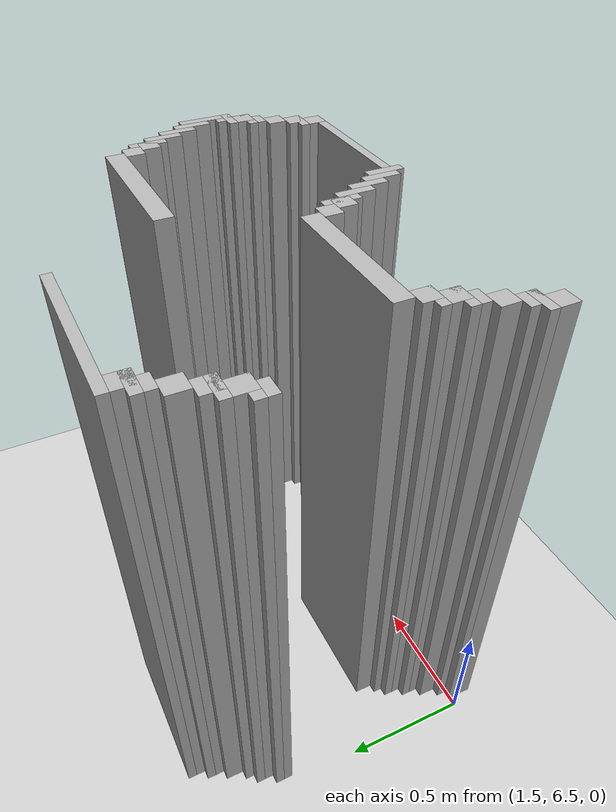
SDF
<sdf version="1.6">
 <world name="slam_world">
  <model name="ground_plane">
   <static>true</static>
   <link name="link">
    <collision name="collision">
     <geometry><plane><normal>0 0 1</normal><size>100 100</size></plane></geometry>
    </collision>
    <visual name="visual">
     <geometry><plane><normal>0 0 1</normal><size>100 100</size></plane></geometry>
     <material>
      <ambient>0.8 0.8 0.8 1</ambient>
      <diffuse>0.8 0.8 0.8 1</diffuse>
      <specular>0.8 0.8 0.8 1</specular>
     </material>
    </visual>
   </link>
  </model>
  <model name="wall_3194">
   <static>true</static>
   <pose>2.0011600928074245 7.6392111368909505 1.0 0 0 0</pose>
   <link name="link">
    <collision name="collision">
     <geometry><box><size>0.5916473317865429 0.03480278422273782 2.0</size></box></geometry>
    </collision>
    <visual name="visual">
     <geometry><box><size>0.5916473317865429 0.03480278422273782 2.0</size></box></geometry>
     <material><ambient>0.5 0.5 0.5 1</ambient><diffuse>0.7 0.7 0.7 1</diffuse></material>
    </visual>
   </link>
  </model>
  <model name="wall_3206">
   <static>true</static>
   <pose>1.740139211136891 7.587006960556844 1.0 0 0 0</pose>
   <link name="link">
    <collision name="collision">
     <geometry><box><size>0.06960556844547564 0.06960556844547564 2.0</size></box></geometry>
    </collision>
    <visual name="visual">
     <geometry><box><size>0.06960556844547564 0.06960556844547564 2.0</size></box></geometry>
     <material><ambient>0.5 0.5 0.5 1</ambient><diffuse>0.7 0.7 0.7 1</diffuse></material>
    </visual>
   </link>
  </model>
  <model name="wall_3219">
   <static>true</static>
   <pose>1.722737819025522 7.569605568445476 1.0 0 0 0</pose>
   <link name="link">
    <collision name="collision">
     <geometry><box><size>0.10440835266821345 0.03480278422273782 2.0</size></box></geometry>
    </collision>
    <visual name="visual">
     <geometry><box><size>0.10440835266821345 0.03480278422273782 2.0</size></box></geometry>
     <material><ambient>0.5 0.5 0.5 1</ambient><diffuse>0.7 0.7 0.7 1</diffuse></material>
    </visual>
   </link>
  </model>
  <model name="wall_3232">
   <static>true</static>
   <pose>1.705336426914153 7.534802784222737 1.0 0 0 0</pose>
   <link name="link">
    <collision name="collision">
     <geometry><box><size>0.06960556844547564 0.03480278422273782 2.0</size></box></geometry>
    </collision>
    <visual name="visual">
     <geometry><box><size>0.06960556844547564 0.03480278422273782 2.0</size></box></geometry>
     <material><ambient>0.5 0.5 0.5 1</ambient><diffuse>0.7 0.7 0.7 1</diffuse></material>
    </visual>
   </link>
  </model>
  <model name="wall_3241">
   <static>true</static>
   <pose>1.6705336426914152 7.48259860788863 1.0 0 0 0</pose>
   <link name="link">
    <collision name="collision">
     <geometry><box><size>0.06960556844547564 0.06960556844547564 2.0</size></box></geometry>
    </collision>
    <visual name="visual">
     <geometry><box><size>0.06960556844547564 0.06960556844547564 2.0</size></box></geometry>
     <material><ambient>0.5 0.5 0.5 1</ambient><diffuse>0.7 0.7 0.7 1</diffuse></material>
    </visual>
   </link>
  </model>
  <model name="wall_3254">
   <static>true</static>
   <pose>1.6357308584686774 7.412993039443156 1.0 0 0 0</pose>
   <link name="link">
    <collision name="collision">
     <geometry><box><size>0.06960556844547564 0.06960556844547564 2.0</size></box></geometry>
    </collision>
    <visual name="visual">
     <geometry><box><size>0.06960556844547564 0.06960556844547564 2.0</size></box></geometry>
     <material><ambient>0.5 0.5 0.5 1</ambient><diffuse>0.7 0.7 0.7 1</diffuse></material>
    </visual>
   </link>
  </model>
  <model name="wall_3267">
   <static>true</static>
   <pose>1.6183294663573085 7.395591647331786 1.0 0 0 0</pose>
   <link name="link">
    <collision name="collision">
     <geometry><box><size>0.10440835266821345 0.03480278422273782 2.0</size></box></geometry>
    </collision>
    <visual name="visual">
     <geometry><box><size>0.10440835266821345 0.03480278422273782 2.0</size></box></geometry>
     <material><ambient>0.5 0.5 0.5 1</ambient><diffuse>0.7 0.7 0.7 1</diffuse></material>
    </visual>
   </link>
  </model>
  <model name="wall_3279">
   <static>true</static>
   <pose>1.6009280742459395 7.34338747099768 1.0 0 0 0</pose>
   <link name="link">
    <collision name="collision">
     <geometry><box><size>0.06960556844547564 0.06960556844547564 2.0</size></box></geometry>
    </collision>
    <visual name="visual">
     <geometry><box><size>0.06960556844547564 0.06960556844547564 2.0</size></box></geometry>
     <material><ambient>0.5 0.5 0.5 1</ambient><diffuse>0.7 0.7 0.7 1</diffuse></material>
    </visual>
   </link>
  </model>
  <model name="wall_3287">
   <static>true</static>
   <pose>1.5835266821345706 7.32598607888631 1.0 0 0 0</pose>
   <link name="link">
    <collision name="collision">
     <geometry><box><size>0.10440835266821345 0.03480278422273782 2.0</size></box></geometry>
    </collision>
    <visual name="visual">
     <geometry><box><size>0.10440835266821345 0.03480278422273782 2.0</size></box></geometry>
     <material><ambient>0.5 0.5 0.5 1</ambient><diffuse>0.7 0.7 0.7 1</diffuse></material>
    </visual>
   </link>
  </model>
  <model name="wall_3299">
   <static>true</static>
   <pose>1.5661252900232019 7.291183294663573 1.0 0 0 0</pose>
   <link name="link">
    <collision name="collision">
     <geometry><box><size>0.06960556844547564 0.03480278422273782 2.0</size></box></geometry>
    </collision>
    <visual name="visual">
     <geometry><box><size>0.06960556844547564 0.03480278422273782 2.0</size></box></geometry>
     <material><ambient>0.5 0.5 0.5 1</ambient><diffuse>0.7 0.7 0.7 1</diffuse></material>
    </visual>
   </link>
  </model>
  <model name="wall_3307">
   <static>true</static>
   <pose>2.7494199535962878 7.238979118329466 1.0 0 0 0</pose>
   <link name="link">
    <collision name="collision">
     <geometry><box><size>0.5568445475638051 0.06960556844547564 2.0</size></box></geometry>
    </collision>
    <visual name="visual">
     <geometry><box><size>0.5568445475638051 0.06960556844547564 2.0</size></box></geometry>
     <material><ambient>0.5 0.5 0.5 1</ambient><diffuse>0.7 0.7 0.7 1</diffuse></material>
    </visual>
   </link>
  </model>
  <model name="wall_3320">
   <static>true</static>
   <pose>3.02784222737819 7.16937354988399 1.0 0 0 0</pose>
   <link name="link">
    <collision name="collision">
     <geometry><box><size>0.06960556844547564 0.06960556844547564 2.0</size></box></geometry>
    </collision>
    <visual name="visual">
     <geometry><box><size>0.06960556844547564 0.06960556844547564 2.0</size></box></geometry>
     <material><ambient>0.5 0.5 0.5 1</ambient><diffuse>0.7 0.7 0.7 1</diffuse></material>
    </visual>
   </link>
  </model>
  <model name="wall_3332">
   <static>true</static>
   <pose>3.0800464037122968 7.099767981438514 1.0 0 0 0</pose>
   <link name="link">
    <collision name="collision">
     <geometry><box><size>0.03480278422273782 0.13921113689095127 2.0</size></box></geometry>
    </collision>
    <visual name="visual">
     <geometry><box><size>0.03480278422273782 0.13921113689095127 2.0</size></box></geometry>
     <material><ambient>0.5 0.5 0.5 1</ambient><diffuse>0.7 0.7 0.7 1</diffuse></material>
    </visual>
   </link>
  </model>
  <model name="wall_3344">
   <static>true</static>
   <pose>3.062645011600928 7.099767981438514 1.0 0 0 0</pose>
   <link name="link">
    <collision name="collision">
     <geometry><box><size>0.06960556844547564 0.06960556844547564 2.0</size></box></geometry>
    </collision>
    <visual name="visual">
     <geometry><box><size>0.06960556844547564 0.06960556844547564 2.0</size></box></geometry>
     <material><ambient>0.5 0.5 0.5 1</ambient><diffuse>0.7 0.7 0.7 1</diffuse></material>
    </visual>
   </link>
  </model>
  <model name="wall_3356">
   <static>true</static>
   <pose>3.1148491879350346 7.03016241299304 1.0 0 0 0</pose>
   <link name="link">
    <collision name="collision">
     <geometry><box><size>0.03480278422273782 0.13921113689095127 2.0</size></box></geometry>
    </collision>
    <visual name="visual">
     <geometry><box><size>0.03480278422273782 0.13921113689095127 2.0</size></box></geometry>
     <material><ambient>0.5 0.5 0.5 1</ambient><diffuse>0.7 0.7 0.7 1</diffuse></material>
    </visual>
   </link>
  </model>
  <model name="wall_3373">
   <static>true</static>
   <pose>3.1496519721577725 6.960556844547564 1.0 0 0 0</pose>
   <link name="link">
    <collision name="collision">
     <geometry><box><size>0.03480278422273782 0.13921113689095127 2.0</size></box></geometry>
    </collision>
    <visual name="visual">
     <geometry><box><size>0.03480278422273782 0.13921113689095127 2.0</size></box></geometry>
     <material><ambient>0.5 0.5 0.5 1</ambient><diffuse>0.7 0.7 0.7 1</diffuse></material>
    </visual>
   </link>
  </model>
  <model name="wall_3390">
   <static>true</static>
   <pose>3.1844547563805103 6.890951276102088 1.0 0 0 0</pose>
   <link name="link">
    <collision name="collision">
     <geometry><box><size>0.03480278422273782 0.13921113689095127 2.0</size></box></geometry>
    </collision>
    <visual name="visual">
     <geometry><box><size>0.03480278422273782 0.13921113689095127 2.0</size></box></geometry>
     <material><ambient>0.5 0.5 0.5 1</ambient><diffuse>0.7 0.7 0.7 1</diffuse></material>
    </visual>
   </link>
  </model>
  <model name="wall_3402">
   <static>true</static>
   <pose>3.219257540603248 6.821345707656612 1.0 0 0 0</pose>
   <link name="link">
    <collision name="collision">
     <geometry><box><size>0.03480278422273782 0.2088167053364269 2.0</size></box></geometry>
    </collision>
    <visual name="visual">
     <geometry><box><size>0.03480278422273782 0.2088167053364269 2.0</size></box></geometry>
     <material><ambient>0.5 0.5 0.5 1</ambient><diffuse>0.7 0.7 0.7 1</diffuse></material>
    </visual>
   </link>
  </model>
  <model name="wall_3419">
   <static>true</static>
   <pose>2.0185614849187936 6.821345707656612 1.0 0 0 0</pose>
   <link name="link">
    <collision name="collision">
     <geometry><box><size>0.5568445475638051 0.06960556844547564 2.0</size></box></geometry>
    </collision>
    <visual name="visual">
     <geometry><box><size>0.5568445475638051 0.06960556844547564 2.0</size></box></geometry>
     <material><ambient>0.5 0.5 0.5 1</ambient><diffuse>0.7 0.7 0.7 1</diffuse></material>
    </visual>
   </link>
  </model>
  <model name="wall_3438">
   <static>true</static>
   <pose>1.740139211136891 6.751740139211137 1.0 0 0 0</pose>
   <link name="link">
    <collision name="collision">
     <geometry><box><size>0.06960556844547564 0.06960556844547564 2.0</size></box></geometry>
    </collision>
    <visual name="visual">
     <geometry><box><size>0.06960556844547564 0.06960556844547564 2.0</size></box></geometry>
     <material><ambient>0.5 0.5 0.5 1</ambient><diffuse>0.7 0.7 0.7 1</diffuse></material>
    </visual>
   </link>
  </model>
  <model name="wall_3439">
   <static>true</static>
   <pose>2.296983758700696 6.751740139211137 1.0 0 0 0</pose>
   <link name="link">
    <collision name="collision">
     <geometry><box><size>0.06960556844547564 0.06960556844547564 2.0</size></box></geometry>
    </collision>
    <visual name="visual">
     <geometry><box><size>0.06960556844547564 0.06960556844547564 2.0</size></box></geometry>
     <material><ambient>0.5 0.5 0.5 1</ambient><diffuse>0.7 0.7 0.7 1</diffuse></material>
    </visual>
   </link>
  </model>
  <model name="wall_3440">
   <static>true</static>
   <pose>3.201856148491879 6.751740139211137 1.0 0 0 0</pose>
   <link name="link">
    <collision name="collision">
     <geometry><box><size>0.06960556844547564 0.06960556844547564 2.0</size></box></geometry>
    </collision>
    <visual name="visual">
     <geometry><box><size>0.06960556844547564 0.06960556844547564 2.0</size></box></geometry>
     <material><ambient>0.5 0.5 0.5 1</ambient><diffuse>0.7 0.7 0.7 1</diffuse></material>
    </visual>
   </link>
  </model>
  <model name="wall_3458">
   <static>true</static>
   <pose>1.722737819025522 6.734338747099768 1.0 0 0 0</pose>
   <link name="link">
    <collision name="collision">
     <geometry><box><size>0.10440835266821345 0.03480278422273782 2.0</size></box></geometry>
    </collision>
    <visual name="visual">
     <geometry><box><size>0.10440835266821345 0.03480278422273782 2.0</size></box></geometry>
     <material><ambient>0.5 0.5 0.5 1</ambient><diffuse>0.7 0.7 0.7 1</diffuse></material>
    </visual>
   </link>
  </model>
  <model name="wall_3459">
   <static>true</static>
   <pose>2.3491879350348026 6.682134570765661 1.0 0 0 0</pose>
   <link name="link">
    <collision name="collision">
     <geometry><box><size>0.03480278422273782 0.13921113689095127 2.0</size></box></geometry>
    </collision>
    <visual name="visual">
     <geometry><box><size>0.03480278422273782 0.13921113689095127 2.0</size></box></geometry>
     <material><ambient>0.5 0.5 0.5 1</ambient><diffuse>0.7 0.7 0.7 1</diffuse></material>
    </visual>
   </link>
  </model>
  <model name="wall_3460">
   <static>true</static>
   <pose>3.1844547563805103 6.734338747099768 1.0 0 0 0</pose>
   <link name="link">
    <collision name="collision">
     <geometry><box><size>0.10440835266821345 0.03480278422273782 2.0</size></box></geometry>
    </collision>
    <visual name="visual">
     <geometry><box><size>0.10440835266821345 0.03480278422273782 2.0</size></box></geometry>
     <material><ambient>0.5 0.5 0.5 1</ambient><diffuse>0.7 0.7 0.7 1</diffuse></material>
    </visual>
   </link>
  </model>
  <model name="wall_3478">
   <static>true</static>
   <pose>1.705336426914153 6.682134570765661 1.0 0 0 0</pose>
   <link name="link">
    <collision name="collision">
     <geometry><box><size>0.06960556844547564 0.06960556844547564 2.0</size></box></geometry>
    </collision>
    <visual name="visual">
     <geometry><box><size>0.06960556844547564 0.06960556844547564 2.0</size></box></geometry>
     <material><ambient>0.5 0.5 0.5 1</ambient><diffuse>0.7 0.7 0.7 1</diffuse></material>
    </visual>
   </link>
  </model>
  <model name="wall_3479">
   <static>true</static>
   <pose>2.331786542923434 6.682134570765661 1.0 0 0 0</pose>
   <link name="link">
    <collision name="collision">
     <geometry><box><size>0.06960556844547564 0.06960556844547564 2.0</size></box></geometry>
    </collision>
    <visual name="visual">
     <geometry><box><size>0.06960556844547564 0.06960556844547564 2.0</size></box></geometry>
     <material><ambient>0.5 0.5 0.5 1</ambient><diffuse>0.7 0.7 0.7 1</diffuse></material>
    </visual>
   </link>
  </model>
  <model name="wall_3480">
   <static>true</static>
   <pose>3.167053364269141 6.682134570765661 1.0 0 0 0</pose>
   <link name="link">
    <collision name="collision">
     <geometry><box><size>0.06960556844547564 0.06960556844547564 2.0</size></box></geometry>
    </collision>
    <visual name="visual">
     <geometry><box><size>0.06960556844547564 0.06960556844547564 2.0</size></box></geometry>
     <material><ambient>0.5 0.5 0.5 1</ambient><diffuse>0.7 0.7 0.7 1</diffuse></material>
    </visual>
   </link>
  </model>
  <model name="wall_3498">
   <static>true</static>
   <pose>1.6879350348027842 6.664733178654292 1.0 0 0 0</pose>
   <link name="link">
    <collision name="collision">
     <geometry><box><size>0.10440835266821345 0.03480278422273782 2.0</size></box></geometry>
    </collision>
    <visual name="visual">
     <geometry><box><size>0.10440835266821345 0.03480278422273782 2.0</size></box></geometry>
     <material><ambient>0.5 0.5 0.5 1</ambient><diffuse>0.7 0.7 0.7 1</diffuse></material>
    </visual>
   </link>
  </model>
  <model name="wall_3499">
   <static>true</static>
   <pose>2.3839907192575405 6.612529002320185 1.0 0 0 0</pose>
   <link name="link">
    <collision name="collision">
     <geometry><box><size>0.03480278422273782 0.13921113689095127 2.0</size></box></geometry>
    </collision>
    <visual name="visual">
     <geometry><box><size>0.03480278422273782 0.13921113689095127 2.0</size></box></geometry>
     <material><ambient>0.5 0.5 0.5 1</ambient><diffuse>0.7 0.7 0.7 1</diffuse></material>
    </visual>
   </link>
  </model>
  <model name="wall_3500">
   <static>true</static>
   <pose>3.1496519721577725 6.664733178654292 1.0 0 0 0</pose>
   <link name="link">
    <collision name="collision">
     <geometry><box><size>0.10440835266821345 0.03480278422273782 2.0</size></box></geometry>
    </collision>
    <visual name="visual">
     <geometry><box><size>0.10440835266821345 0.03480278422273782 2.0</size></box></geometry>
     <material><ambient>0.5 0.5 0.5 1</ambient><diffuse>0.7 0.7 0.7 1</diffuse></material>
    </visual>
   </link>
  </model>
  <model name="wall_3517">
   <static>true</static>
   <pose>1.6705336426914152 6.629930394431554 1.0 0 0 0</pose>
   <link name="link">
    <collision name="collision">
     <geometry><box><size>0.06960556844547564 0.03480278422273782 2.0</size></box></geometry>
    </collision>
    <visual name="visual">
     <geometry><box><size>0.06960556844547564 0.03480278422273782 2.0</size></box></geometry>
     <material><ambient>0.5 0.5 0.5 1</ambient><diffuse>0.7 0.7 0.7 1</diffuse></material>
    </visual>
   </link>
  </model>
  <model name="wall_3518">
   <static>true</static>
   <pose>3.1322505800464038 6.629930394431554 1.0 0 0 0</pose>
   <link name="link">
    <collision name="collision">
     <geometry><box><size>0.06960556844547564 0.03480278422273782 2.0</size></box></geometry>
    </collision>
    <visual name="visual">
     <geometry><box><size>0.06960556844547564 0.03480278422273782 2.0</size></box></geometry>
     <material><ambient>0.5 0.5 0.5 1</ambient><diffuse>0.7 0.7 0.7 1</diffuse></material>
    </visual>
   </link>
  </model>
  <model name="wall_3528">
   <static>true</static>
   <pose>1.6357308584686774 6.577726218097448 1.0 0 0 0</pose>
   <link name="link">
    <collision name="collision">
     <geometry><box><size>0.06960556844547564 0.06960556844547564 2.0</size></box></geometry>
    </collision>
    <visual name="visual">
     <geometry><box><size>0.06960556844547564 0.06960556844547564 2.0</size></box></geometry>
     <material><ambient>0.5 0.5 0.5 1</ambient><diffuse>0.7 0.7 0.7 1</diffuse></material>
    </visual>
   </link>
  </model>
  <model name="wall_3529">
   <static>true</static>
   <pose>2.4187935034802783 6.5429234338747095 1.0 0 0 0</pose>
   <link name="link">
    <collision name="collision">
     <geometry><box><size>0.03480278422273782 0.13921113689095127 2.0</size></box></geometry>
    </collision>
    <visual name="visual">
     <geometry><box><size>0.03480278422273782 0.13921113689095127 2.0</size></box></geometry>
     <material><ambient>0.5 0.5 0.5 1</ambient><diffuse>0.7 0.7 0.7 1</diffuse></material>
    </visual>
   </link>
  </model>
  <model name="wall_3530">
   <static>true</static>
   <pose>3.097447795823666 6.577726218097448 1.0 0 0 0</pose>
   <link name="link">
    <collision name="collision">
     <geometry><box><size>0.06960556844547564 0.06960556844547564 2.0</size></box></geometry>
    </collision>
    <visual name="visual">
     <geometry><box><size>0.06960556844547564 0.06960556844547564 2.0</size></box></geometry>
     <material><ambient>0.5 0.5 0.5 1</ambient><diffuse>0.7 0.7 0.7 1</diffuse></material>
    </visual>
   </link>
  </model>
  <model name="wall_3548">
   <static>true</static>
   <pose>1.6009280742459395 6.508120649651972 1.0 0 0 0</pose>
   <link name="link">
    <collision name="collision">
     <geometry><box><size>0.06960556844547564 0.06960556844547564 2.0</size></box></geometry>
    </collision>
    <visual name="visual">
     <geometry><box><size>0.06960556844547564 0.06960556844547564 2.0</size></box></geometry>
     <material><ambient>0.5 0.5 0.5 1</ambient><diffuse>0.7 0.7 0.7 1</diffuse></material>
    </visual>
   </link>
  </model>
  <model name="wall_3549">
   <static>true</static>
   <pose>2.453596287703016 6.473317865429234 1.0 0 0 0</pose>
   <link name="link">
    <collision name="collision">
     <geometry><box><size>0.03480278422273782 0.13921113689095127 2.0</size></box></geometry>
    </collision>
    <visual name="visual">
     <geometry><box><size>0.03480278422273782 0.13921113689095127 2.0</size></box></geometry>
     <material><ambient>0.5 0.5 0.5 1</ambient><diffuse>0.7 0.7 0.7 1</diffuse></material>
    </visual>
   </link>
  </model>
  <model name="wall_3550">
   <static>true</static>
   <pose>3.062645011600928 6.508120649651972 1.0 0 0 0</pose>
   <link name="link">
    <collision name="collision">
     <geometry><box><size>0.06960556844547564 0.06960556844547564 2.0</size></box></geometry>
    </collision>
    <visual name="visual">
     <geometry><box><size>0.06960556844547564 0.06960556844547564 2.0</size></box></geometry>
     <material><ambient>0.5 0.5 0.5 1</ambient><diffuse>0.7 0.7 0.7 1</diffuse></material>
    </visual>
   </link>
  </model>
  <model name="wall_3568">
   <static>true</static>
   <pose>1.5835266821345706 6.490719257540603 1.0 0 0 0</pose>
   <link name="link">
    <collision name="collision">
     <geometry><box><size>0.10440835266821345 0.03480278422273782 2.0</size></box></geometry>
    </collision>
    <visual name="visual">
     <geometry><box><size>0.10440835266821345 0.03480278422273782 2.0</size></box></geometry>
     <material><ambient>0.5 0.5 0.5 1</ambient><diffuse>0.7 0.7 0.7 1</diffuse></material>
    </visual>
   </link>
  </model>
  <model name="wall_3569">
   <static>true</static>
   <pose>2.488399071925754 6.438515081206496 1.0 0 0 0</pose>
   <link name="link">
    <collision name="collision">
     <geometry><box><size>0.03480278422273782 0.13921113689095127 2.0</size></box></geometry>
    </collision>
    <visual name="visual">
     <geometry><box><size>0.03480278422273782 0.13921113689095127 2.0</size></box></geometry>
     <material><ambient>0.5 0.5 0.5 1</ambient><diffuse>0.7 0.7 0.7 1</diffuse></material>
    </visual>
   </link>
  </model>
  <model name="wall_3570">
   <static>true</static>
   <pose>3.045243619489559 6.490719257540603 1.0 0 0 0</pose>
   <link name="link">
    <collision name="collision">
     <geometry><box><size>0.10440835266821345 0.03480278422273782 2.0</size></box></geometry>
    </collision>
    <visual name="visual">
     <geometry><box><size>0.10440835266821345 0.03480278422273782 2.0</size></box></geometry>
     <material><ambient>0.5 0.5 0.5 1</ambient><diffuse>0.7 0.7 0.7 1</diffuse></material>
    </visual>
   </link>
  </model>
  <model name="wall_3587">
   <static>true</static>
   <pose>1.5661252900232019 6.438515081206496 1.0 0 0 0</pose>
   <link name="link">
    <collision name="collision">
     <geometry><box><size>0.06960556844547564 0.06960556844547564 2.0</size></box></geometry>
    </collision>
    <visual name="visual">
     <geometry><box><size>0.06960556844547564 0.06960556844547564 2.0</size></box></geometry>
     <material><ambient>0.5 0.5 0.5 1</ambient><diffuse>0.7 0.7 0.7 1</diffuse></material>
    </visual>
   </link>
  </model>
  <model name="wall_3588">
   <static>true</static>
   <pose>3.02784222737819 6.438515081206496 1.0 0 0 0</pose>
   <link name="link">
    <collision name="collision">
     <geometry><box><size>0.06960556844547564 0.06960556844547564 2.0</size></box></geometry>
    </collision>
    <visual name="visual">
     <geometry><box><size>0.06960556844547564 0.06960556844547564 2.0</size></box></geometry>
     <material><ambient>0.5 0.5 0.5 1</ambient><diffuse>0.7 0.7 0.7 1</diffuse></material>
    </visual>
   </link>
  </model>
  <model name="wall_3599">
   <static>true</static>
   <pose>2.784222737819025 6.421113689095128 1.0 0 0 0</pose>
   <link name="link">
    <collision name="collision">
     <geometry><box><size>0.5568445475638051 0.03480278422273782 2.0</size></box></geometry>
    </collision>
    <visual name="visual">
     <geometry><box><size>0.5568445475638051 0.03480278422273782 2.0</size></box></geometry>
     <material><ambient>0.5 0.5 0.5 1</ambient><diffuse>0.7 0.7 0.7 1</diffuse></material>
    </visual>
   </link>
  </model>
 </world>
</sdf>
